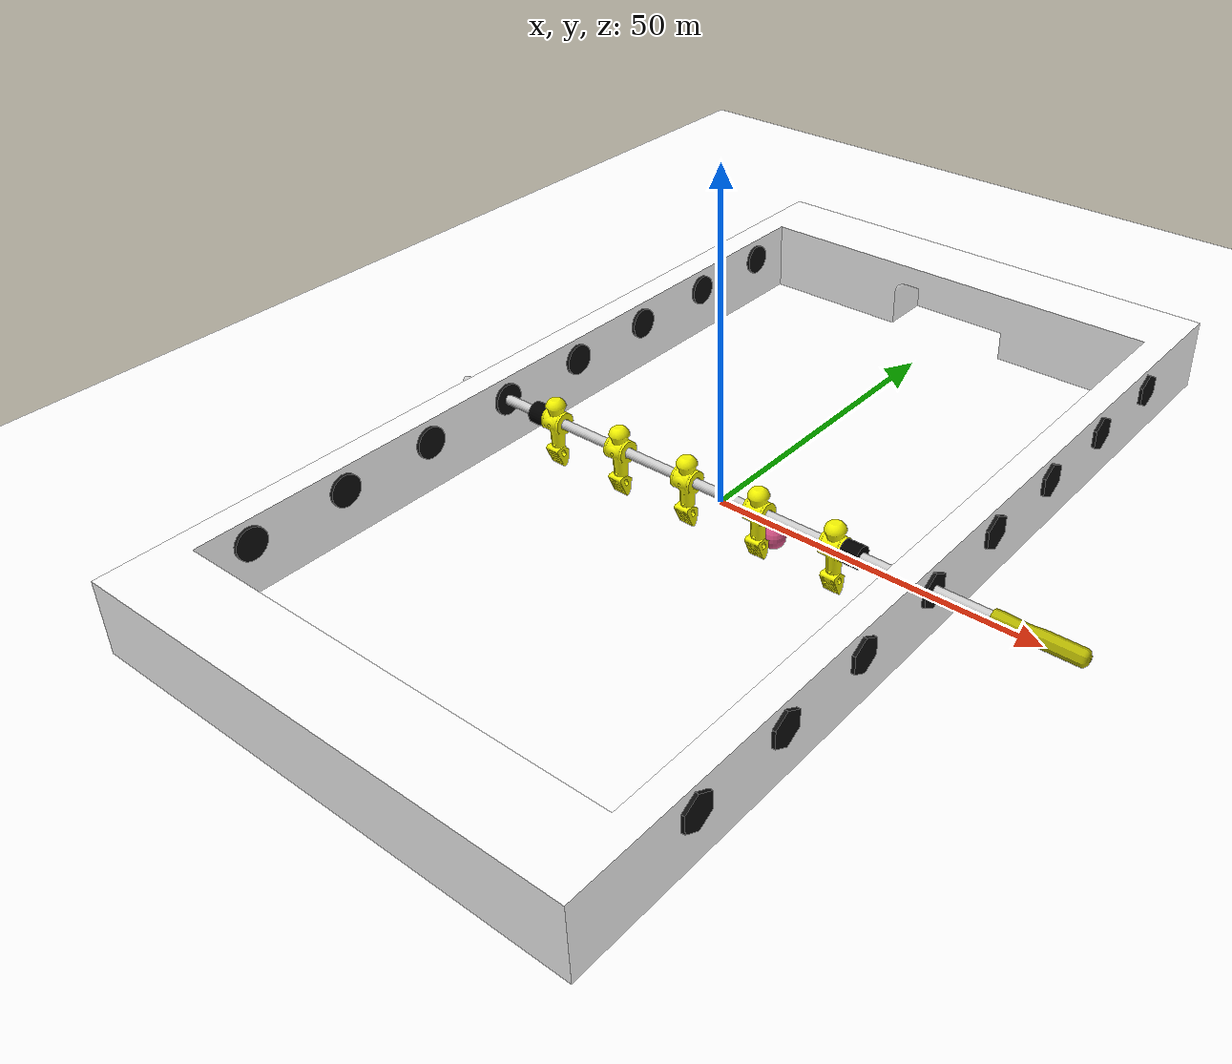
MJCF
<mujoco>
    <default>
      <default class="visual">
        <geom group="2" type="mesh"/>
      </default>
      <default class="collision">
        <geom group="3" type="mesh"/>
      </default>
    </default>

    <!-- SDF plugin block removed -->

    <asset>

      <!-- table mesh: plugin references removed -->
      <mesh name="table" file="asset/foosball_table/foosball_table.obj"/> <!-- already scaled down (0.1)-->

      <!-- guy mesh: plugin references removed -->
      <mesh name="guy" file="asset/foosman/mesh_down_foosman.obj" scale="0.1 0.1 0.1"/>

      <mesh name="handle" file="asset/handle/foosball_handle.obj" scale="0.1 0.1 0.1"/>
    </asset>

    <option sdf_iterations="20" sdf_initpoints="40">
      <flag contact="enable"/>
    </option>

    <visual>
      <map force="1000"/>
    </visual>

    <statistic meansize="0.2"/>

    <default>
      <geom solref="0.004 1" solimp=".99 .99 .00001" condim="4"/>
    </default>

    <include file="foosball_scene.xml"/>

    <worldbody>
      <!-- TABLE-->
      <body name="table" euler="90 90 0" pos="0 0 0">
        <geom type="mesh" name="table" mesh="table" rgba="1.0 1.0 1.0 1" group="2"/>
      </body>

      <!-- Yellow Midfield Rod-->
      <body name="y_mid_rod" pos="6.887 -7.5 7.75" euler="0 90 0">
        <joint name="y_mid_linear" type="slide" axis="0 0 1" range="-500 500" stiffness="0"/>
        <joint name="y_mid_rotation" type="hinge" axis="0 0 1" range="-180.0 180.0" stiffness="0"/>
        <inertial pos="0 0 0" mass="1.1264" diaginertia="91.364224 91.364224 0.044368"/>

        <!-- Yellow Midfield Aluminum Rod -->
        <geom type="cylinder" size="0.714375 49.365" pos="0 0 0" rgba="0.8 0.8 0.8 1"/>

        <!-- Yellow Handle -->
        <body name="y_mid_rod_handle" pos="0 0 46.34" euler="180 0 0">
          <geom type="mesh" mesh="handle" mass="0.01" rgba="0.7 0.7 0.0 1"/>
        </body>

        <!-- Rubber Pad-->
        <body name="y_mid_rod_r_rubber" pos="0 0 -33.695" euler="0 0 90">
          <inertial pos="0 0 0" quat="1 0 0 0" mass="0.05" diaginertia="0.00179 0.00179 0.00306"/>
          <geom name="y_mid_rod_r_rubber" type="cylinder" friction="0.1" size="1.5875 1.27" pos="0 0 0" rgba="0.0 0.0 0.0 1"/>
        </body>
        <body name="y_mid_rod_l_rubber" pos="0 0 19.92" euler="0 0 90">
          <inertial pos="0 0 0" quat="1 0 0 0" mass="0.05" diaginertia="0.00179 0.00179 0.00306"/>
          <geom name="y_mid_rod_l_rubber" type="cylinder" friction="0.1" size="1.5875 1.27" pos="0 0 0" rgba="0.0 0.0 0.0 1"/>
        </body>

        <!-- 5 Yellow Players -->
        <body name="y_mid_guy1" pos="1.5 0 -30.837" euler="180 -90 0">
          <geom type="mesh" name="y_mid_guy1" mesh="guy" mass="0.07" density="1000"
                rgba="0.95 0.95 0.0 1"/>
        </body>

        <body name="y_mid_guy2" pos="1.5 0 -18.862" euler="180 -90 0">
          <geom type="mesh" name="y_mid_guy2" mesh="guy" mass="0.07" density="1000"
                rgba="0.95 0.95 0.0 1"/>
        </body>

        <body name="y_mid_guy3" pos="1.5 0 -6.887" euler="180 -90 0">
          <geom type="mesh" name="y_mid_guy3" mesh="guy" mass="0.07" density="1000"
                rgba="0.95 0.95 0.0 1"/>
        </body>

        <body name="y_mid_guy4" pos="1.5 0 5.088" euler="180 -90 0">
          <geom type="mesh" name="y_mid_guy4" mesh="guy" mass="0.07" density="1000"
                rgba="0.95 0.95 0.0 1"/>
        </body>

        <body name="y_mid_guy5" pos="1.5 0 17.063" euler="180 -90 0">
          <geom type="mesh" name="y_mid_guy5" mesh="guy" mass="0.07" density="1000"
                rgba="0.95 0.95 0.0 1"/>
        </body>
      </body>

      <!-- MATCH BALL-->

      <body name="ball" pos="12 -4 1.705">
        <joint name="ball_x" type="slide" axis="1 0 0" frictionloss="5"/>
        <joint name="ball_y" type="slide" axis="0 1 0" frictionloss="5"/>
        <geom name="ball" type="sphere" size="1.73355" mass="0.1" rgba="0.8 0.3 0.5 1"
              friction="0.01 0.1 10"/>
      </body>

    </worldbody>

    <!-- exclude the contact between the rods and the table -->
    <contact>
      <exclude body1="y_mid_rod" body2="table"/>

      <exclude body1="y_mid_rod_handle" body2="table"/>

      <exclude body1="table_side_rubber_y_mid_r" body2="y_mid_rod"/>
      <exclude body1="table_side_rubber_y_mid_l" body2="y_mid_rod"/>
    </contact>

    <!-- Adjust the controller parameters (e.g., kp, kv) to replicate the simulated motion in the real-world environment, as physical dynamics may differ -->
    <actuator>
      <position name="y_mid_linear" joint="y_mid_linear" ctrlrange="-7.0 7.0" kp="10000" kv="200"/>
      <position name="y_mid_rotation" joint="y_mid_rotation" ctrlrange="-2.5 2.5" kp="10000" kv="500"/>
    </actuator>

</mujoco>

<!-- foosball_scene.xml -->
<mujoco>
    <compiler texturedir="asset"/>

    <statistic meansize=".05"/>

    <default>
      <geom solref="0.004 1" solimp=".99 .99 .00001"  condim="4"/>
    </default>

    <asset>
      <texture name="field_pattern" type="2d" file="field.png"/>
      <material name="field" texture="field_pattern"/>

      <texture name="black_color" type="2d" file="black.png"/>
      <material name="black" texture="black_color"/>

      <mesh name="outside_rubber" file="asset/outside_rubber/table_outside_rubber.obj" scale='0.1 0.1 0.1'/>
    </asset>

    <worldbody>
      <light directional="true"  specular="0.2 0.2 0.2" pos="0 0 4" dir="0 0 -1"/>

      <body name="background" pos="0 0 -5" euler="0 0 0">
        <geom type="plane" size="500 500 .01" rgba="1.0 1.0 1.0 1.0" contype="0" conaffinity="0"/>
      </body>

      <body name="ground" pos="0 0 -0.03" euler="0 0 180">
        <geom type="plane" size="35 63 0.01" material="field" friction="0.01 0.1 10"/>
      </body>

    <!-- Table's inside rubber pads -->
      <body name="table_side_rubber_y_goal_r">
        <geom type="cylinder" pos="-33.75 -52.5 7.75" euler="90 90 0" size="2.4 0.25"
              contype="5" conaffinity="5" rgba='0.05 0.05 0.05 1' friction="0.01" group="2"/>
      </body>
      <body name="table_side_rubber_y_goal_l">
        <geom type="cylinder" pos="33.75 -52.5 7.75" euler="90 90 0" size="2.4 0.25"
              contype="5" conaffinity="5" rgba='0.05 0.05 0.05 1' friction="0.01" group="2"/>
      </body>
      <body name="table_side_rubber_y_def_r">
        <geom type="cylinder" pos="-33.75 -37.5 7.75" euler="90 90 0" size="2.4 0.25"
              contype="5" conaffinity="5" rgba='0.05 0.05 0.05 1' friction="0.01" group="2"/>
      </body>
      <body name="table_side_rubber_y_def_l">
        <geom type="cylinder" pos="33.75 -37.5 7.75" euler="90 90 0" size="2.4 0.25"
              contype="5" conaffinity="5" rgba='0.05 0.05 0.05 1' friction="0.01" group="2"/>
      </body>
      <body name="table_side_rubber_y_mid_r">
        <geom type="cylinder" pos="-33.75 -7.5 7.75" euler="90 90 0" size="2.4 0.25"
              contype="5" conaffinity="5" rgba='0.05 0.05 0.05 1' friction="0.01" group="2"/>
      </body>
      <body name="table_side_rubber_y_mid_l">
        <geom type="cylinder" pos="33.75 -7.5 7.75" euler="90 90 0" size="2.4 0.25"
              contype="5" conaffinity="5" rgba='0.05 0.05 0.05 1' friction="0.01" group="2"/>
      </body>
      <body name="table_side_rubber_y_attack_r">
        <geom type="cylinder" pos="-33.75 22.5 7.75" euler="90 90 0" size="2.4 0.25"
              contype="5" conaffinity="5" rgba='0.05 0.05 0.05 1' friction="0.01" group="2"/>
      </body>
      <body name="table_side_rubber_y_attack_l">
        <geom type="cylinder" pos="33.75 22.5 7.75" euler="90 90 0" size="2.4 0.25"
              contype="5" conaffinity="5" rgba='0.05 0.05 0.05 1' friction="0.01" group="2"/>
      </body>

      <body name="table_side_rubber_b_goal_r">
        <geom type="cylinder" pos="-33.75 52.5 7.75" euler="90 90 0" size="2.4 0.25"
              contype="5" conaffinity="5" rgba='0.05 0.05 0.05 1' friction="0.01" group="2"/>
      </body>
      <body name="table_side_rubber_b_goal_l">
        <geom type="cylinder" pos="33.75 52.5 7.75" euler="90 90 0" size="2.4 0.25"
              contype="5" conaffinity="5" rgba='0.05 0.05 0.05 1' friction="0.01" group="2"/>
      </body>
      <body name="table_side_rubber_b_def_r">
        <geom type="cylinder" pos="-33.75 37.5 7.75" euler="90 90 0" size="2.4 0.25"
              contype="5" conaffinity="5" rgba='0.05 0.05 0.05 1' friction="0.01" group="2"/>
      </body>
      <body name="table_side_rubber_b_def_l">
        <geom type="cylinder" pos="33.75 37.5 7.75" euler="90 90 0" size="2.4 0.25"
              contype="5" conaffinity="5" rgba='0.05 0.05 0.05 1' friction="0.01" group="2"/>
      </body>
      <body name="table_side_rubber_b_mid_r">
        <geom type="cylinder" pos="-33.75 7.5 7.75" euler="90 90 0" size="2.4 0.25"
              contype="5" conaffinity="5" rgba='0.05 0.05 0.05 1' friction="0.01" group="2"/>
      </body>
      <body name="table_side_rubber_b_mid_l">
        <geom type="cylinder" pos="33.75 7.5 7.75" euler="90 90 0" size="2.4 0.25"
              contype="5" conaffinity="5" rgba='0.05 0.05 0.05 1' friction="0.01" group="2"/>
      </body>
      <body name="table_side_rubber_b_attack_r">
        <geom type="cylinder" pos="-33.75 -22.5 7.75" euler="90 90 0" size="2.4 0.25"
              contype="5" conaffinity="5" rgba='0.05 0.05 0.05 1' friction="0.01" group="2"/>
      </body>
      <body name="table_side_rubber_b_attack_l">
        <geom type="cylinder" pos="33.75 -22.5 7.75" euler="90 90 0" size="2.4 0.25"
              contype="5" conaffinity="5" rgba='0.05 0.05 0.05 1' friction="0.01" group="2"/>
      </body>

    <!-- Table's outside rubber pads -->
      <body name="outside_rubber_y_goal_r" pos="-38.35 -52.5 7.75" euler="0 0 90">
        <geom contype="0" conaffinity="0" type="mesh" mesh="outside_rubber" rgba='0.05 0.05 0.05 1' group="2"></geom>
      </body>
      <body name="outside_rubber_y_goal_l" pos="38.35 -52.5 7.75" euler="0 0 90">
        <geom contype="0" conaffinity="0" type="mesh" mesh="outside_rubber" rgba='0.05 0.05 0.05 1' group="2"></geom>
      </body>
      <body name="outside_rubber_y_def_r" pos="-38.35 -37.5 7.75" euler="0 0 90">
        <geom contype="0" conaffinity="0" type="mesh" mesh="outside_rubber" rgba='0.05 0.05 0.05 1' group="2"></geom>
      </body>
      <body name="outside_rubber_y_def_l" pos="38.35 -37.5 7.75" euler="0 0 90">
        <geom contype="0" conaffinity="0" type="mesh" mesh="outside_rubber" rgba='0.05 0.05 0.05 1' group="2"></geom>
      </body>
      <body name="outside_rubber_y_mid_r" pos="-38.35 -7.5 7.75" euler="0 0 90">
        <geom contype="0" conaffinity="0" type="mesh" mesh="outside_rubber" rgba='0.05 0.05 0.05 1' group="2"></geom>
      </body>
      <body name="outside_rubber_y_mid_l" pos="38.35 -7.5 7.75" euler="0 0 90">
        <geom contype="0" conaffinity="0" type="mesh" mesh="outside_rubber" rgba='0.05 0.05 0.05 1' group="2"></geom>
      </body>
      <body name="outside_rubber_y_attack_r" pos="-38.35 22.5 7.75" euler="0 0 90">
        <geom contype="0" conaffinity="0" type="mesh" mesh="outside_rubber" rgba='0.05 0.05 0.05 1' group="2"></geom>
      </body>
      <body name="outside_rubber_y_attack_l" pos="38.35 22.5 7.75" euler="0 0 90">
        <geom contype="0" conaffinity="0" type="mesh" mesh="outside_rubber" rgba='0.05 0.05 0.05 1' group="2"></geom>
      </body>

      <body name="outside_rubber_b_goal_r" pos="-38.35 52.5 7.75" euler="0 0 90">
        <geom contype="0" conaffinity="0" type="mesh" mesh="outside_rubber" rgba='0.05 0.05 0.05 1' group="2"></geom>
      </body>
      <body name="outside_rubber_b_goal_l" pos="38.35 52.5 7.75" euler="0 0 90">
        <geom contype="0" conaffinity="0" type="mesh" mesh="outside_rubber" rgba='0.05 0.05 0.05 1' group="2"></geom>
      </body>
      <body name="outside_rubber_b_def_r" pos="-38.35 37.5 7.75" euler="0 0 90">
        <geom contype="0" conaffinity="0" type="mesh" mesh="outside_rubber" rgba='0.05 0.05 0.05 1' group="2"></geom>
      </body>
      <body name="outside_rubber_b_def_l" pos="38.35 37.5 7.75" euler="0 0 90">
        <geom contype="0" conaffinity="0" type="mesh" mesh="outside_rubber" rgba='0.05 0.05 0.05 1' group="2"></geom>
      </body>
      <body name="outside_rubber_b_mid_r" pos="-38.35 7.5 7.75" euler="0 0 90">
        <geom contype="0" conaffinity="0" type="mesh" mesh="outside_rubber" rgba='0.05 0.05 0.05 1' group="2"></geom>
      </body>
      <body name="outside_rubber_b_mid_l" pos="38.35 7.5 7.75" euler="0 0 90">
        <geom contype="0" conaffinity="0" type="mesh" mesh="outside_rubber" rgba='0.05 0.05 0.05 1' group="2"></geom>
      </body>
      <body name="outside_rubber_b_attack_r" pos="-38.35 -22.5 7.75" euler="0 0 90">
        <geom contype="0" conaffinity="0" type="mesh" mesh="outside_rubber" rgba='0.05 0.05 0.05 1' group="2"></geom>
      </body>
      <body name="outside_rubber_b_attack_l" pos="38.35 -22.5 7.75" euler="0 0 90">
        <geom contype="0" conaffinity="0" type="mesh" mesh="outside_rubber" rgba='0.05 0.05 0.05 1' group="2"></geom>
      </body>

    <!-- Table serface painting -->
      <body name="table_surface_1">
        <geom type="plane" pos="0 -65.6 11.15" size="38.1 5.5 0.01"
              contype="0" conaffinity="0" rgba='0.05 0.05 0.05 1' group="2"/>
      </body>
      <body name="table_surface_2">
        <geom type="plane" pos="0 65.6 11.15" size="38.1 5.5 0.01"
              contype="0" conaffinity="0" rgba='0.05 0.05 0.05 1' group="2"/>
      </body>
      <body name="table_surface_3">
        <geom type="plane" pos="-36.05 0 11.15" size="2.05 60.1 0.01"
              contype="0" conaffinity="0" rgba='0.05 0.05 0.05 1' group="2"/>
      </body>
      <body name="table_surface_4">
        <geom type="plane" pos="36.05 0 11.15" size="2.05 60.1 0.01"
              contype="0" conaffinity="0" rgba='0.05 0.05 0.05 1' group="2"/>
      </body>

    </worldbody>
  </mujoco>
